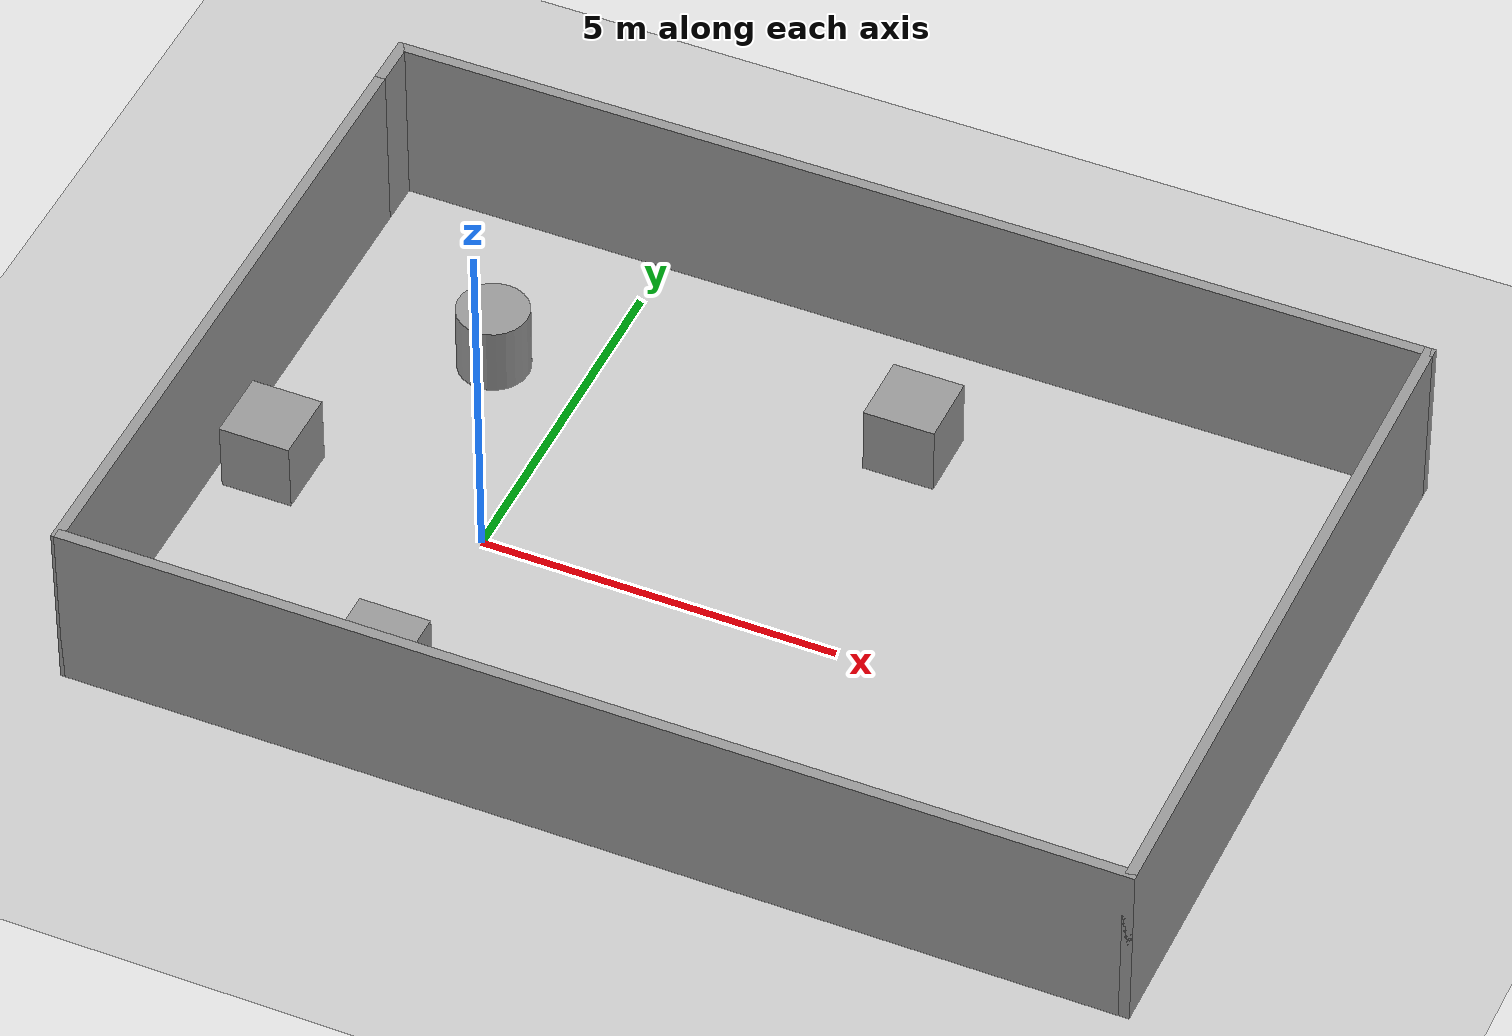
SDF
<sdf version="1.6">
 <world name="default">
  <light name="sun" type="directional">
   <pose>0 0 10 0 -0 0</pose>
   <diffuse>0.8 0.8 0.8 1</diffuse>
   <specular>0.1 0.1 0.1 1</specular>
   <attenuation>
    <range>1000</range>
    <constant>0.9</constant>
    <linear>0.01</linear>
    <quadratic>0.001</quadratic>
   </attenuation>
   <direction>-0.5 0.5 -1</direction>
  </light>
  <model name="ground_plane">
   <static>1</static>
   <link name="link">
    <collision name="collision">
     <geometry><plane><normal>0 0 1</normal><size>100 100</size></plane></geometry>
     <surface><friction><ode><mu>100</mu><mu2>50</mu2></ode></friction></surface>
    </collision>
    <visual name="visual">
     <cast_shadows>0</cast_shadows>
     <geometry><plane><normal>0 0 1</normal><size>100 100</size></plane></geometry>
     <material>
      <script><uri>file://media/materials/scripts/gazebo.material</uri><name>Gazebo/Grey</name></script>
     </material>
    </visual>
   </link>
  </model>
  <gravity>0 0 -9.8</gravity>
  <magnetic_field>6e-06 2.3e-05 -4.2e-05</magnetic_field>
  <atmosphere type="adiabatic"/>
  <physics name="default_physics" default="0" type="ode">
   <max_step_size>0.001</max_step_size>
   <real_time_factor>1</real_time_factor>
   <real_time_update_rate>1000</real_time_update_rate>
  </physics>
  <scene><ambient>0.4 0.4 0.4 1</ambient><background>0.7 0.7 0.7 1</background><shadows>1</shadows></scene>
  <spherical_coordinates>
   <surface_model>EARTH_WGS84</surface_model>
   <latitude_deg>0</latitude_deg>
   <longitude_deg>0</longitude_deg>
   <elevation>0</elevation>
   <heading_deg>0</heading_deg>
  </spherical_coordinates>
  <model name="Untitled">
   <pose>3.46714 0.758212 0 0 -0 0</pose>
   <link name="Wall_10">
    <collision name="Wall_10_Collision">
     <geometry><box><size>14.75 0.15 2.5</size></box></geometry>
     <pose>0 0 1.25 0 -0 0</pose>
    </collision>
    <visual name="Wall_10_Visual">
     <pose>0 0 1.25 0 -0 0</pose>
     <geometry><box><size>14.75 0.15 2.5</size></box></geometry>
     <material>
      <script><uri>file://media/materials/scripts/gazebo.material</uri><name>Gazebo/Grey</name></script>
      <ambient>1 1 1 1</ambient>
     </material>
    </visual>
    <pose>0 5.05 0 0 -0 3.14159</pose>
   </link>
   <link name="Wall_11">
    <collision name="Wall_11_Collision">
     <geometry><box><size>0.9 0.15 2.5</size></box></geometry>
     <pose>0 0 1.25 0 -0 0</pose>
    </collision>
    <visual name="Wall_11_Visual">
     <pose>0 0 1.25 0 -0 0</pose>
     <geometry><box><size>0.9 0.15 2.5</size></box></geometry>
     <material>
      <script><uri>file://media/materials/scripts/gazebo.material</uri><name>Gazebo/Grey</name></script>
      <ambient>1 1 1 1</ambient>
     </material>
    </visual>
    <pose>-7.3 4.675 0 0 0 -1.5708</pose>
   </link>
   <link name="Wall_7">
    <collision name="Wall_7_Collision">
     <geometry><box><size>9.5 0.15 2.5</size></box></geometry>
     <pose>0 0 1.25 0 -0 0</pose>
    </collision>
    <visual name="Wall_7_Visual">
     <pose>0 0 1.25 0 -0 0</pose>
     <geometry><box><size>9.5 0.15 2.5</size></box></geometry>
     <material>
      <script><uri>file://media/materials/scripts/gazebo.material</uri><name>Gazebo/Grey</name></script>
      <ambient>1 1 1 1</ambient>
     </material>
    </visual>
    <pose>-7.3 -0.375 0 0 0 -1.5708</pose>
   </link>
   <link name="Wall_8">
    <collision name="Wall_8_Collision">
     <geometry><box><size>14.75 0.15 2.5</size></box></geometry>
     <pose>0 0 1.25 0 -0 0</pose>
    </collision>
    <visual name="Wall_8_Visual">
     <pose>0 0 1.25 0 -0 0</pose>
     <geometry><box><size>14.75 0.15 2.5</size></box></geometry>
     <material>
      <script><uri>file://media/materials/scripts/gazebo.material</uri><name>Gazebo/Grey</name></script>
      <ambient>1 1 1 1</ambient>
     </material>
    </visual>
    <pose>0 -5.05 0 0 -0 0</pose>
   </link>
   <link name="Wall_9">
    <collision name="Wall_9_Collision">
     <geometry><box><size>10.25 0.15 2.5</size></box></geometry>
     <pose>0 0 1.25 0 -0 0</pose>
    </collision>
    <visual name="Wall_9_Visual">
     <pose>0 0 1.25 0 -0 0</pose>
     <geometry><box><size>10.25 0.15 2.5</size></box></geometry>
     <material>
      <script><uri>file://media/materials/scripts/gazebo.material</uri><name>Gazebo/Grey</name></script>
      <ambient>1 1 1 1</ambient>
     </material>
    </visual>
    <pose>7.3 0 0 0 -0 1.5708</pose>
   </link>
   <static>1</static>
  </model>
  <model name="unit_box_0">
   <pose>4.45775 3.77698 0.499995 -1e-05 0 0</pose>
   <link name="link">
    <inertial>
     <mass>1</mass>
     <inertia>
      <ixx>0.166667</ixx>
      <ixy>0</ixy>
      <ixz>0</ixz>
      <iyy>0.166667</iyy>
      <iyz>0</iyz>
      <izz>0.166667</izz>
     </inertia>
    </inertial>
    <collision name="collision"><geometry><box><size>1 1 1</size></box></geometry></collision>
    <visual name="visual">
     <geometry><box><size>1 1 1</size></box></geometry>
     <material>
      <script><name>Gazebo/Grey</name><uri>file://media/materials/scripts/gazebo.material</uri></script>
     </material>
    </visual>
   </link>
  </model>
  <model name="unit_box_1">
   <pose>-0.051218 -2.9596 0.499995 0 1e-05 0</pose>
   <link name="link">
    <inertial>
     <mass>1</mass>
     <inertia>
      <ixx>0.166667</ixx>
      <ixy>0</ixy>
      <ixz>0</ixz>
      <iyy>0.166667</iyy>
      <iyz>0</iyz>
      <izz>0.166667</izz>
     </inertia>
    </inertial>
    <collision name="collision"><geometry><box><size>1 1 1</size></box></geometry></collision>
    <visual name="visual">
     <geometry><box><size>1 1 1</size></box></geometry>
     <material>
      <script><name>Gazebo/Grey</name><uri>file://media/materials/scripts/gazebo.material</uri></script>
     </material>
    </visual>
   </link>
  </model>
  <model name="unit_box_2">
   <pose>-3.06276 0.113369 0.499995 -1e-05 0 0</pose>
   <link name="link">
    <inertial>
     <mass>1</mass>
     <inertia>
      <ixx>0.166667</ixx>
      <ixy>0</ixy>
      <ixz>0</ixz>
      <iyy>0.166667</iyy>
      <iyz>0</iyz>
      <izz>0.166667</izz>
     </inertia>
    </inertial>
    <collision name="collision"><geometry><box><size>1 1 1</size></box></geometry></collision>
    <visual name="visual">
     <geometry><box><size>1 1 1</size></box></geometry>
     <material>
      <script><name>Gazebo/Grey</name><uri>file://media/materials/scripts/gazebo.material</uri></script>
     </material>
    </visual>
   </link>
  </model>
  <model name="unit_cylinder_0">
   <pose>-1.27647 3.11462 0.499997 3e-06 4e-06 -0</pose>
   <link name="link">
    <inertial>
     <mass>1</mass>
     <inertia><ixx>0.145833</ixx><ixy>0</ixy><ixz>0</ixz><iyy>0.145833</iyy><iyz>0</iyz><izz>0.125</izz></inertia>
    </inertial>
    <collision name="collision">
     <geometry><cylinder><radius>0.5</radius><length>1</length></cylinder></geometry>
    </collision>
    <visual name="visual">
     <geometry><cylinder><radius>0.5</radius><length>1</length></cylinder></geometry>
     <material>
      <script><name>Gazebo/Grey</name><uri>file://media/materials/scripts/gazebo.material</uri></script>
     </material>
    </visual>
   </link>
  </model>
 </world>
</sdf>
